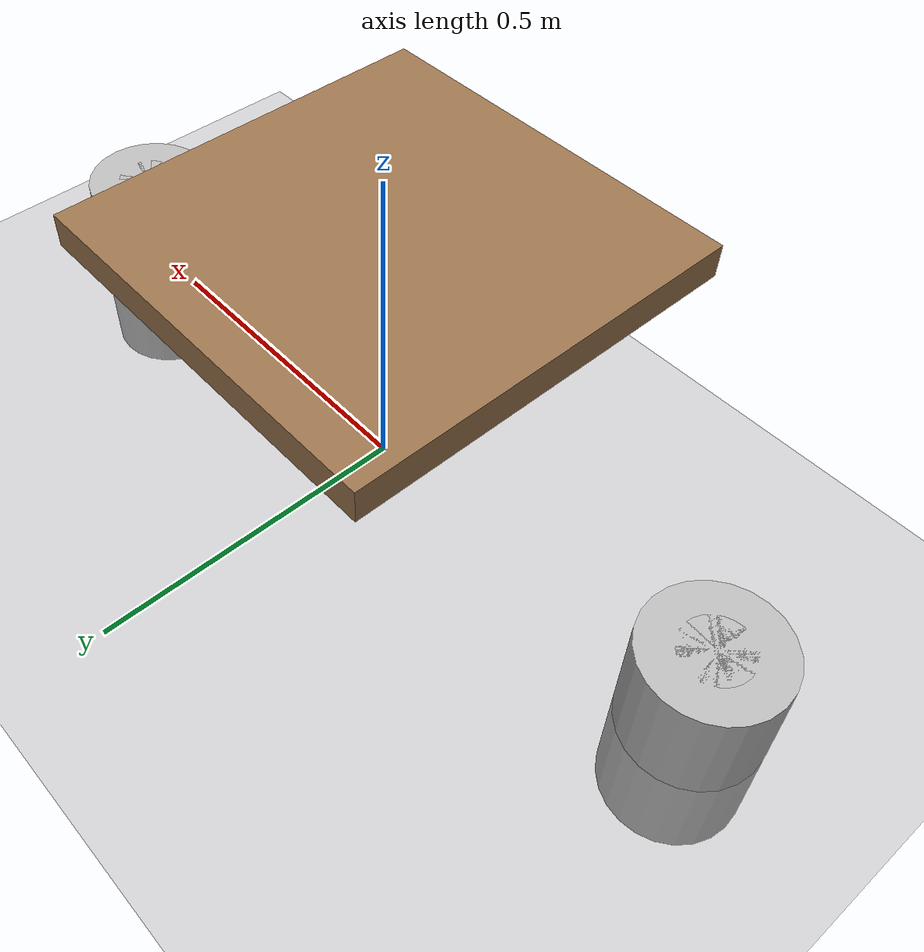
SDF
<?xml version="1.0" encoding="UTF-8"?>
<sdf version="1.8">
  <world name="dual_fanuc_cell">
    <physics name="default" type="ignored">
      <max_step_size>0.001</max_step_size>
      <real_time_factor>1.0</real_time_factor>
    </physics>

    <plugin filename="gz-sim-physics-system"
            name="gz::sim::systems::Physics"/>
    <plugin filename="gz-sim-user-commands-system"
            name="gz::sim::systems::UserCommands"/>
    <plugin filename="gz-sim-scene-broadcaster-system"
            name="gz::sim::systems::SceneBroadcaster"/>
    <plugin filename="gz-sim-sensors-system"
            name="gz::sim::systems::Sensors">
      <render_engine>ogre2</render_engine>
    </plugin>

    <light type="directional" name="sun">
      <cast_shadows>true</cast_shadows>
      <pose>0 0 10 0 0 0</pose>
      <diffuse>0.8 0.8 0.8 1</diffuse>
      <specular>0.2 0.2 0.2 1</specular>
      <direction>-0.5 0.1 -0.9</direction>
    </light>

    <model name="ground_plane">
      <static>true</static>
      <link name="link">
        <collision name="collision">
          <geometry>
            <plane>
              <normal>0 0 1</normal>
              <size>10 10</size>
            </plane>
          </geometry>
        </collision>
        <visual name="visual">
          <geometry>
            <plane>
              <normal>0 0 1</normal>
              <size>10 10</size>
            </plane>
          </geometry>
          <material>
            <ambient>0.3 0.3 0.3 1</ambient>
            <diffuse>0.5 0.5 0.5 1</diffuse>
          </material>
        </visual>
      </link>
    </model>

    <include>
      <uri>model://dual_fanuc</uri>
      <name>fanuc_left</name>
      <pose>-0.6 0 0 0 0 0</pose>
    </include>

    <include>
      <uri>model://dual_fanuc</uri>
      <name>fanuc_right</name>
      <pose>0.6 0 0 0 0 3.14159</pose>
    </include>

    <model name="work_table">
      <static>true</static>
      <pose>0 0 0.40 0 0 0</pose>
      <link name="link">
        <collision name="collision">
          <geometry>
            <box>
              <size>0.6 0.6 0.05</size>
            </box>
          </geometry>
        </collision>
        <visual name="visual">
          <geometry>
            <box>
              <size>0.6 0.6 0.05</size>
            </box>
          </geometry>
          <material>
            <ambient>0.4 0.3 0.2 1</ambient>
            <diffuse>0.6 0.45 0.30 1</diffuse>
          </material>
        </visual>
      </link>
    </model>

  </world>
</sdf>

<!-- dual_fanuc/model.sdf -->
<sdf version="1.7">
  <model name="fanuc_lrmate200id">
    <static>false</static>

    <link name="base_link">
      <inertial>
        <mass>6</mass>
        <inertia>
          <ixx>0.06</ixx><iyy>0.06</iyy><izz>0.06</izz>
          <ixy>0</ixy><ixz>0</ixz><iyz>0</iyz>
        </inertia>
      </inertial>
      <visual name="base_link_visual">
        <geometry>
          <cylinder>
            <radius>0.1</radius>
            <length>0.33</length>
          </cylinder>
        </geometry>
      </visual>
      <collision name="base_link_collision">
        <geometry>
          <cylinder>
            <radius>0.1</radius>
            <length>0.33</length>
          </cylinder>
        </geometry>
      </collision>
    </link>

    <link name="link_j1">
      <inertial>
        <mass>4.5</mass>
        <inertia>
          <ixx>0.045</ixx><iyy>0.045</iyy><izz>0.045</izz>
          <ixy>0</ixy><ixz>0</ixz><iyz>0</iyz>
        </inertia>
      </inertial>
      <visual name="link_j1_visual">
        <geometry>
          <cylinder>
            <radius>0.085</radius>
            <length>0.15</length>
          </cylinder>
        </geometry>
      </visual>
      <collision name="link_j1_collision">
        <geometry>
          <cylinder>
            <radius>0.085</radius>
            <length>0.15</length>
          </cylinder>
        </geometry>
      </collision>
    </link>

    <link name="link_upper_arm">
      <inertial>
        <mass>3.5</mass>
        <inertia>
          <ixx>0.035</ixx><iyy>0.035</iyy><izz>0.035</izz>
          <ixy>0</ixy><ixz>0</ixz><iyz>0</iyz>
        </inertia>
      </inertial>
      <visual name="link_upper_arm_visual">
        <geometry>
          <cylinder>
            <radius>0.05</radius>
            <length>0.33</length>
          </cylinder>
        </geometry>
      </visual>
      <collision name="link_upper_arm_collision">
        <geometry>
          <cylinder>
            <radius>0.05</radius>
            <length>0.33</length>
          </cylinder>
        </geometry>
      </collision>
    </link>

    <link name="link_elbow">
      <inertial>
        <mass>2</mass>
        <inertia>
          <ixx>0.02</ixx><iyy>0.02</iyy><izz>0.02</izz>
          <ixy>0</ixy><ixz>0</ixz><iyz>0</iyz>
        </inertia>
      </inertial>
      <visual name="link_elbow_visual">
        <geometry>
          <cylinder>
            <radius>0.05</radius>
            <length>0.075</length>
          </cylinder>
        </geometry>
      </visual>
      <collision name="link_elbow_collision">
        <geometry>
          <cylinder>
            <radius>0.05</radius>
            <length>0.075</length>
          </cylinder>
        </geometry>
      </collision>
    </link>

    <link name="link_forearm">
      <inertial>
        <mass>2.5</mass>
        <inertia>
          <ixx>0.025</ixx><iyy>0.025</iyy><izz>0.025</izz>
          <ixy>0</ixy><ixz>0</ixz><iyz>0</iyz>
        </inertia>
      </inertial>
      <visual name="link_forearm_visual">
        <geometry>
          <cylinder>
            <radius>0.04</radius>
            <length>0.29</length>
          </cylinder>
        </geometry>
      </visual>
      <collision name="link_forearm_collision">
        <geometry>
          <cylinder>
            <radius>0.04</radius>
            <length>0.29</length>
          </cylinder>
        </geometry>
      </collision>
    </link>

    <link name="link_wrist">
      <inertial>
        <mass>0.8</mass>
        <inertia>
          <ixx>0.008</ixx><iyy>0.008</iyy><izz>0.008</izz>
          <ixy>0</ixy><ixz>0</ixz><iyz>0</iyz>
        </inertia>
      </inertial>
      <visual name="link_wrist_visual">
        <geometry>
          <cylinder>
            <radius>0.04</radius>
            <length>0.05</length>
          </cylinder>
        </geometry>
      </visual>
      <collision name="link_wrist_collision">
        <geometry>
          <cylinder>
            <radius>0.04</radius>
            <length>0.05</length>
          </cylinder>
        </geometry>
      </collision>
    </link>

    <link name="tool_flange">
      <inertial>
        <mass>0.3</mass>
        <inertia>
          <ixx>0.003</ixx><iyy>0.003</iyy><izz>0.003</izz>
          <ixy>0</ixy><ixz>0</ixz><iyz>0</iyz>
        </inertia>
      </inertial>
      <visual name="tool_flange_visual">
        <geometry>
          <cylinder>
            <radius>0.025</radius>
            <length>0.02</length>
          </cylinder>
        </geometry>
      </visual>
      <collision name="tool_flange_collision">
        <geometry>
          <cylinder>
            <radius>0.025</radius>
            <length>0.02</length>
          </cylinder>
        </geometry>
      </collision>
    </link>

    <joint name="j_fix" type="fixed">
      <parent>world</parent>
      <child>base_link</child>
    </joint>

    <joint name="j1" type="revolute">
      <parent>base_link</parent>
      <child>link_j1</child>
      <pose relative_to="base_link">0 0 0.33 0.0000 0.0000 0.0000</pose>
      <axis>
        <xyz>0 0 1</xyz>
        <limit>
          <lower>-170</lower>
          <upper>170</upper>
          <effort>60</effort>
          <velocity>6.28</velocity>
        </limit>
      </axis>
    </joint>

    <joint name="j2" type="revolute">
      <parent>link_j1</parent>
      <child>link_upper_arm</child>
      <pose relative_to="link_j1">0 0 0.075 0.0000 0.0000 0.0000</pose>
      <axis>
        <xyz>0 1 0</xyz>
        <limit>
          <lower>-100</lower>
          <upper>145</upper>
          <effort>60</effort>
          <velocity>5.06</velocity>
        </limit>
      </axis>
    </joint>

    <joint name="j3" type="revolute">
      <parent>link_upper_arm</parent>
      <child>link_elbow</child>
      <pose relative_to="link_upper_arm">0 0 0.33 0.0000 0.0000 0.0000</pose>
      <axis>
        <xyz>0 1 0</xyz>
        <limit>
          <lower>-180</lower>
          <upper>213</upper>
          <effort>50</effort>
          <velocity>6.28</velocity>
        </limit>
      </axis>
    </joint>

    <joint name="j4" type="revolute">
      <parent>link_elbow</parent>
      <child>link_forearm</child>
      <pose relative_to="link_elbow">0 0 0.075 0.0000 0.0000 0.0000</pose>
      <axis>
        <xyz>0 0 1</xyz>
        <limit>
          <lower>-190</lower>
          <upper>190</upper>
          <effort>30</effort>
          <velocity>7.85</velocity>
        </limit>
      </axis>
    </joint>

    <joint name="j5" type="revolute">
      <parent>link_forearm</parent>
      <child>link_wrist</child>
      <pose relative_to="link_forearm">0 0 0.29 0.0000 0.0000 0.0000</pose>
      <axis>
        <xyz>0 1 0</xyz>
        <limit>
          <lower>-125</lower>
          <upper>125</upper>
          <effort>30</effort>
          <velocity>7.85</velocity>
        </limit>
      </axis>
    </joint>

    <joint name="j6" type="revolute">
      <parent>link_wrist</parent>
      <child>tool_flange</child>
      <pose relative_to="link_wrist">0 0 0.05 0.0000 0.0000 0.0000</pose>
      <axis>
        <xyz>0 0 1</xyz>
        <limit>
          <lower>-360</lower>
          <upper>360</upper>
          <effort>20</effort>
          <velocity>12.56</velocity>
        </limit>
      </axis>
    </joint>

  </model>
</sdf>
